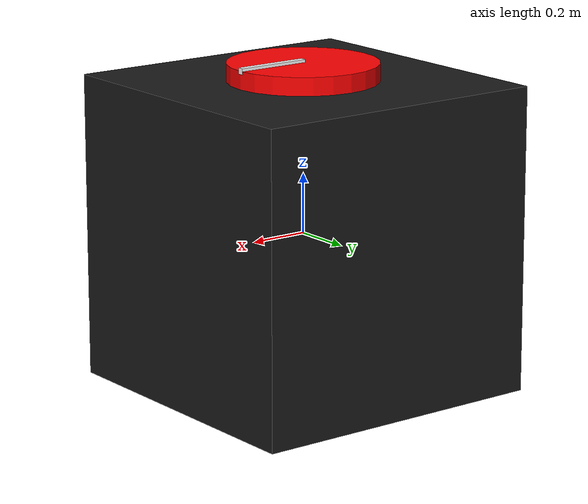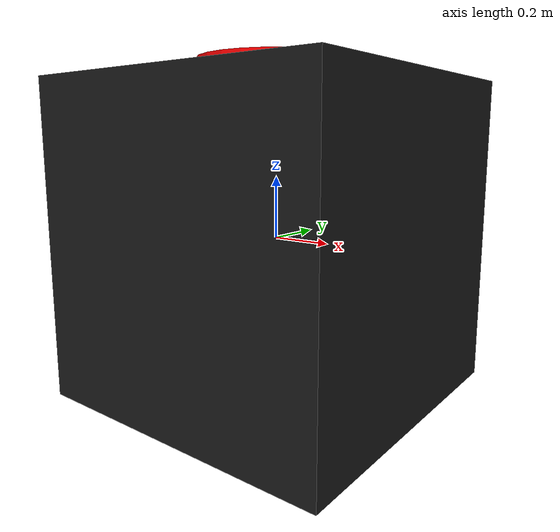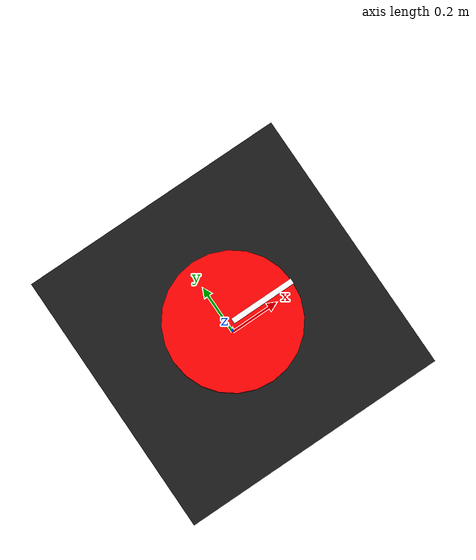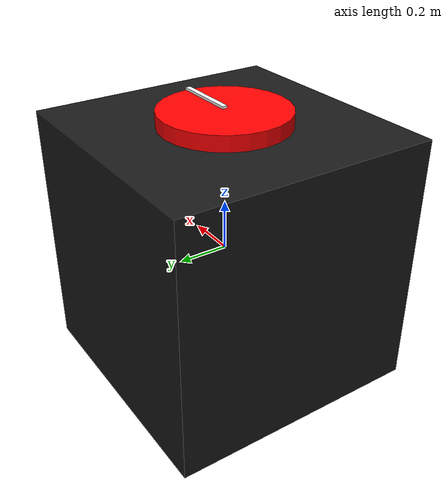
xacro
<!--I got help from Frans Hånes with this part of the code, therefor our code looks similar-->

<?xml version="1.0"?>
<robot name="controlled_qube" xmlns:xacro="http://www.ros.org/wiki/xacro">

  <!--Sets the arguments-->
  <xacro:arg name="baud_rate" default="115200"/>
  <xacro:arg name="device" default="/dev/ttyACM0"/>
  <xacro:arg name="simulation" default="false"/>

  <!--Includes base Qube URDF-->
  <xacro:include filename="$(find qubeDescription)/qube.urdf.xacro"/>

  <!--Include ROS2 Control-->
  <xacro:include filename="$(find qube_driver)/ros2_control/qube_driver.ros2_control.xacro"/>

  <!--Setup ROS2 Control-->
  <xacro:qube_driver_ros2_control
    name="qube_driver"
    prefix=""
    baud_rate="$(arg baud_rate)"
    device="$(arg device)"
    simulation="$(arg simulation)"/>

</robot>

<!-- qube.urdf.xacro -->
<robot name="Petter" xmlns:xacro="http://www.ros.org/wiki/xacro">
  <!--Include the macro-->
  <xacro:include filename="$(find qubeDescription)/qube.macro.xacro"/>

  <link name="map"/>
  <xacro:qube/>
  <joint name="map_to_base" type="fixed">
    <parent link="map"/>
    <child link="base_link"/>
    <origin xyz="0 0 0"/>
  </joint>
</robot>

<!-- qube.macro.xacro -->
<robot xmlns:xacro="http://www.ros.org/wiki/xacro">
  <xacro:macro name="qube">
    <!--Base Cube-->
    <link name="base_link">
      <visual>
        <geometry><box size="1.02 1.02 1.02"/></geometry>
        <material name="black"><color rgba="0.1 0.1 0.1 1"/></material>
      </visual>
      <collision><geometry><box size="0.001 0.001 0.001"/></geometry></collision>
      <inertial>
        <mass value="0.5"/>
        <inertia ixx="0.100" ixy="0" ixz="0" iyy="0.100" iyz="0" izz="0.100"/>
      </inertial>
    </link>

    <!--Spinning Top-->
    <link name="spinning_disk">
      <visual>
        <geometry><cylinder radius="0.25" length="0.1"/></geometry>
        <origin xyz="0 0 0.26" rpy="0 0 0"/>
        <material name="red"><color rgba="1 0 0 1"/></material>
      </visual>
      <collision>
        <geometry><cylinder radius="0.025" length="0.01"/></geometry>
        <origin xyz="0 0 0.26" rpy="0 0 0"/>
      </collision>
      <inertial>
        <mass value="0.1"/>
        <inertia ixx="0.1000" ixy="0" ixz="0" iyy="0.1000" iyz="0" izz="0.1000"/>
      </inertial>
    </link>

    <!--Revolute Joint-->
    <joint name="motor_joint" type="revolute">
      <parent link="base_link"/>
      <child link="spinning_disk"/>
      <axis xyz="0 0 -1"/>  <!--Inverted to make the simulation and actual system move the same way-->
      <origin xyz="0 0 0.26"/>
      <limit effort="100" velocity="100" lower="-314000000" upper="314000000"/>
    </joint>

    <joint name="indicator_joint" type="fixed">
      <parent link="spinning_disk"/>
      <child link="indicator_link"/>
      <origin xyz="0.125 0 0.31"/>
    </joint>
    <!--Indicator-->
    <link name="indicator_link">
      <visual>
        <geometry>
          <box size="0.25 0.02 0.02"/>
        </geometry>
        <material name="indicator_white">
          <color rgba="1 1 1 1"/>
        </material>
      </visual>
    </link>
  </xacro:macro>
</robot>
